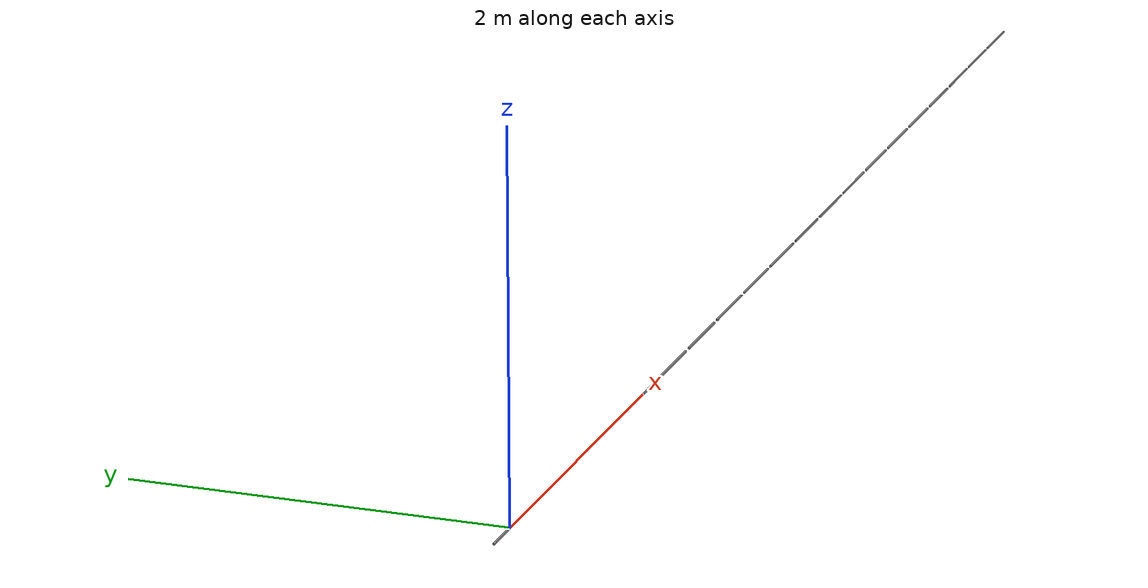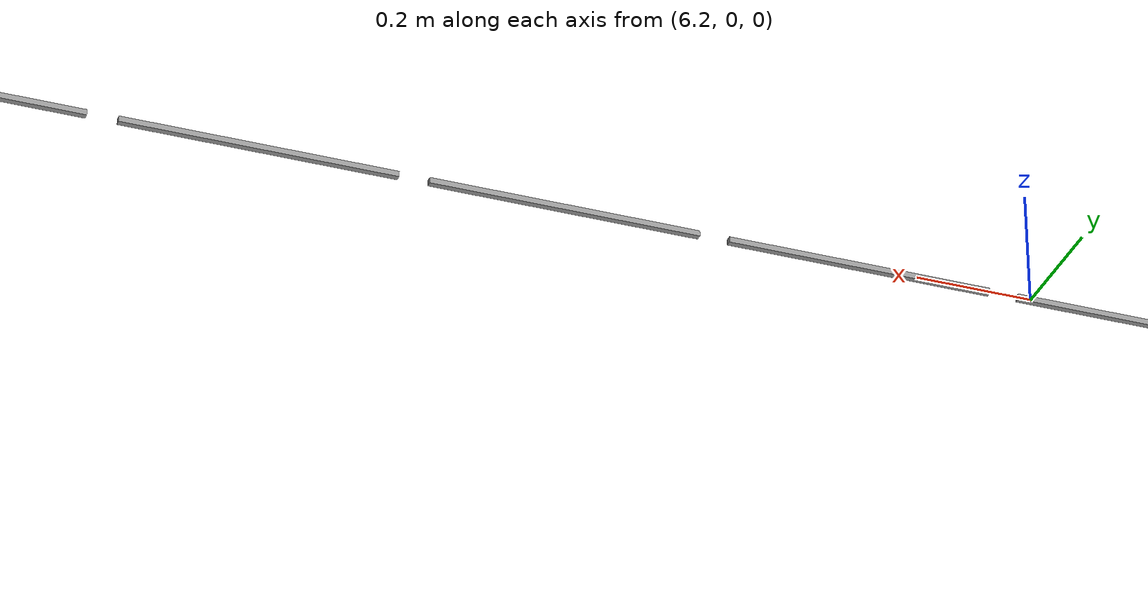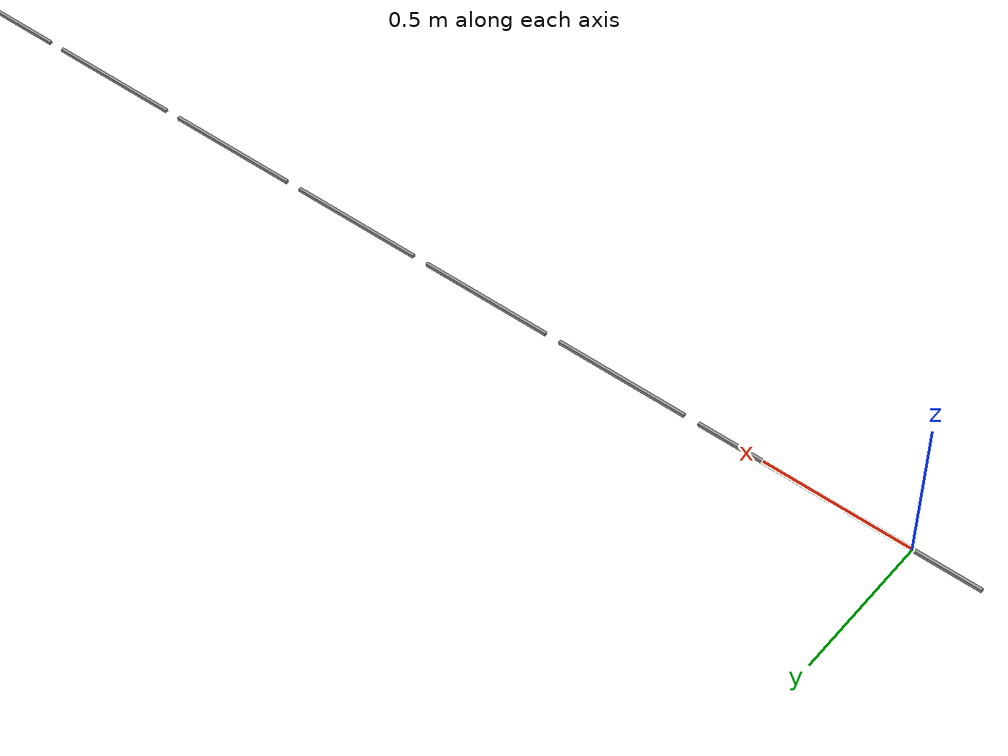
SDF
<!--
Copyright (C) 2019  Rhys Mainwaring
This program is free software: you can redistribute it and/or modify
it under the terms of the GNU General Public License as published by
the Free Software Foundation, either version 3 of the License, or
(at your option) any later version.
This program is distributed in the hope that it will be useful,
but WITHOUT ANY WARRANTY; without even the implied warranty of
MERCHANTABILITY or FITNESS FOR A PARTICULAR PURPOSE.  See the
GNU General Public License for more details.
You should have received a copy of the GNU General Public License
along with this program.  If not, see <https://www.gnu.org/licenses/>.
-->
<?xml version="1.0" ?>
<sdf version="1.6">
  <model name="chain">
    <static>false</static>

    <include>
      <pose>0 0 0 0 0 0</pose>
      <uri>model://chain_link</uri>
      <name>chain_link0</name>
    </include>

    <include>
      <pose>0.5 0 0 0 0 0</pose>
      <uri>model://chain_link</uri>
      <name>chain_link1</name>
    </include>

    <include>
      <pose>1.0 0 0 0 0 0</pose>
      <uri>model://chain_link</uri>
      <name>chain_link2</name>
    </include>

    <include>
      <pose>1.5 0 0 0 0 0</pose>
      <uri>model://chain_link</uri>
      <name>chain_link3</name>
    </include>

    <include>
      <pose>2.0 0 0 0 0 0</pose>
      <uri>model://chain_link</uri>
      <name>chain_link4</name>
    </include>

    <include>
      <pose>2.5 0 0 0 0 0</pose>
      <uri>model://chain_link</uri>
      <name>chain_link5</name>
    </include>

    <include>
      <pose>3.0 0 0 0 0 0</pose>
      <uri>model://chain_link</uri>
      <name>chain_link6</name>
    </include>

    <include>
      <pose>3.5 0 0 0 0 0</pose>
      <uri>model://chain_link</uri>
      <name>chain_link7</name>
    </include>

    <include>
      <pose>4.0 0 0 0 0 0</pose>
      <uri>model://chain_link</uri>
      <name>chain_link8</name>
    </include>

    <include>
      <pose>4.5 0 0 0 0 0</pose>
      <uri>model://chain_link</uri>
      <name>chain_link9</name>
    </include>

    <include>
      <pose>5.0 0 0 0 0 0</pose>
      <uri>model://chain_link</uri>
      <name>chain_link10</name>
    </include>

    <include>
      <pose>5.5 0 0 0 0 0</pose>
      <uri>model://chain_link</uri>
      <name>chain_link11</name>
    </include>

    <include>
      <pose>6.0 0 0 0 0 0</pose>
      <uri>model://chain_link</uri>
      <name>chain_link12</name>
    </include>

    <include>
      <pose>6.5 0 0 0 0 0</pose>
      <uri>model://chain_link</uri>
      <name>chain_link13</name>
    </include>

    <include>
      <pose>7.0 0 0 0 0 0</pose>
      <uri>model://chain_link</uri>
      <name>chain_link14</name>
    </include>

    <include>
      <pose>7.5 0 0 0 0 0</pose>
      <uri>model://chain_link</uri>
      <name>chain_link15</name>
    </include>

    <include>
      <pose>8.0 0 0 0 0 0</pose>
      <uri>model://chain_link</uri>
      <name>chain_link16</name>
    </include>

    <include>
      <pose>8.5 0 0 0 0 0</pose>
      <uri>model://chain_link</uri>
      <name>chain_link17</name>
    </include>

    <include>
      <pose>9.0 0 0 0 0 0</pose>
      <uri>model://chain_link</uri>
      <name>chain_link18</name>
    </include>

    <include>
      <pose>9.5 0 0 0 0 0</pose>
      <uri>model://chain_link</uri>
      <name>chain_link19</name>
    </include>

    <joint type="ball" name="chain_link_0_1_joint">
      <pose>-0.25 0 0 0 0 0</pose>
      <parent>chain_link0::base_link</parent>
      <child>chain_link1::base_link</child>
    </joint>

    <joint type="ball" name="chain_link_1_2_joint">
      <pose>-0.25 0 0 0 0 0</pose>
      <parent>chain_link1::base_link</parent>
      <child>chain_link2::base_link</child>
    </joint>

    <joint type="ball" name="chain_link_2_3_joint">
      <pose>-0.25 0 0 0 0 0</pose>
      <parent>chain_link2::base_link</parent>
      <child>chain_link3::base_link</child>
    </joint>

    <joint type="ball" name="chain_link_3_4_joint">
      <pose>-0.25 0 0 0 0 0</pose>
      <parent>chain_link3::base_link</parent>
      <child>chain_link4::base_link</child>
    </joint>

    <joint type="ball" name="chain_link_4_5_joint">
      <pose>-0.25 0 0 0 0 0</pose>
      <parent>chain_link4::base_link</parent>
      <child>chain_link5::base_link</child>
    </joint>

    <joint type="ball" name="chain_link_5_6_joint">
      <pose>-0.25 0 0 0 0 0</pose>
      <parent>chain_link5::base_link</parent>
      <child>chain_link6::base_link</child>
    </joint>

    <joint type="ball" name="chain_link_6_7_joint">
      <pose>-0.25 0 0 0 0 0</pose>
      <parent>chain_link6::base_link</parent>
      <child>chain_link7::base_link</child>
    </joint>

    <joint type="ball" name="chain_link_7_8_joint">
      <pose>-0.25 0 0 0 0 0</pose>
      <parent>chain_link7::base_link</parent>
      <child>chain_link8::base_link</child>
    </joint>

    <joint type="ball" name="chain_link_8_9_joint">
      <pose>-0.25 0 0 0 0 0</pose>
      <parent>chain_link8::base_link</parent>
      <child>chain_link9::base_link</child>
    </joint>

    <joint type="ball" name="chain_link_9_10_joint">
      <pose>-0.25 0 0 0 0 0</pose>
      <parent>chain_link9::base_link</parent>
      <child>chain_link10::base_link</child>
    </joint>

    <joint type="ball" name="chain_link_10_11_joint">
      <pose>-0.25 0 0 0 0 0</pose>
      <parent>chain_link10::base_link</parent>
      <child>chain_link11::base_link</child>
    </joint>

    <joint type="ball" name="chain_link_11_12_joint">
      <pose>-0.25 0 0 0 0 0</pose>
      <parent>chain_link11::base_link</parent>
      <child>chain_link12::base_link</child>
    </joint>

    <joint type="ball" name="chain_link_12_13_joint">
      <pose>-0.25 0 0 0 0 0</pose>
      <parent>chain_link12::base_link</parent>
      <child>chain_link13::base_link</child>
    </joint>

    <joint type="ball" name="chain_link_13_14_joint">
      <pose>-0.25 0 0 0 0 0</pose>
      <parent>chain_link13::base_link</parent>
      <child>chain_link14::base_link</child>
    </joint>

    <joint type="ball" name="chain_link_14_15_joint">
      <pose>-0.25 0 0 0 0 0</pose>
      <parent>chain_link14::base_link</parent>
      <child>chain_link15::base_link</child>
    </joint>

    <joint type="ball" name="chain_link_15_16_joint">
      <pose>-0.25 0 0 0 0 0</pose>
      <parent>chain_link15::base_link</parent>
      <child>chain_link16::base_link</child>
    </joint>

    <joint type="ball" name="chain_link_16_17_joint">
      <pose>-0.25 0 0 0 0 0</pose>
      <parent>chain_link16::base_link</parent>
      <child>chain_link17::base_link</child>
    </joint>

    <joint type="ball" name="chain_link_17_18_joint">
      <pose>-0.25 0 0 0 0 0</pose>
      <parent>chain_link17::base_link</parent>
      <child>chain_link18::base_link</child>
    </joint>

    <joint type="ball" name="chain_link_18_19_joint">
      <pose>-0.25 0 0 0 0 0</pose>
      <parent>chain_link18::base_link</parent>
      <child>chain_link19::base_link</child>
    </joint>

  </model>
</sdf>

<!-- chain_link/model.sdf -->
<sdf version='1.6'>

  <model name='chain_link'>
    <pose>0 0 0 0 0 0</pose>
    <static>false</static>
    <link name="base_link">
      <visual name="base_visual">
        <geometry>
          <box>
            <size>0.45 0.01 0.01</size>
          </box>
        </geometry>
        <material>
          <script>
            <name>Gazebo/Grey</name>
          </script>
        </material>
      </visual>
      <collision name="base_collision">
        <max_contacts>2</max_contacts>
        <geometry>
          <box>
            <size>0.45 0.01 0.01</size>
          </box>
        </geometry>
      </collision>
      <inertial>
        <pose>0 0 0 0 0 0</pose>
        <mass>0.3465</mass>
        <inertia>
          <ixx>0.00000577</ixx>
          <ixy>0</ixy>
          <iyy>0.00585</iyy>
          <iyz>0</iyz>
          <izz>0.00585</izz>
        </inertia>
      </inertial>
    </link>
  </model>
</sdf>
